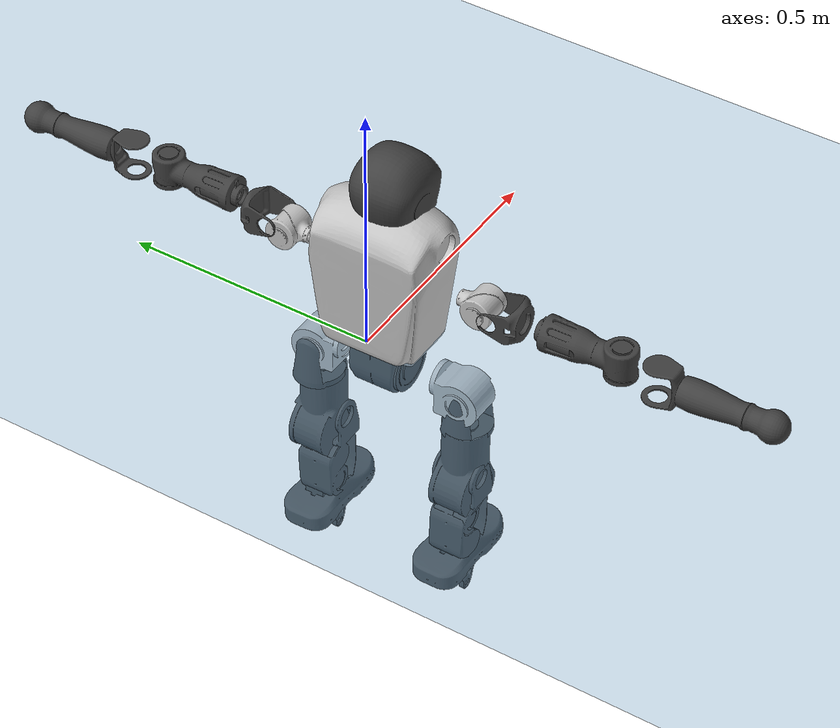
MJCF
<mujoco model="T1">
  <compiler angle="radian" assetdir="assets" balanceinertia="true" inertiafromgeom="false"/>

  <option timestep="0.005" density="1.2" viscosity="2e-05"/>

  <size nkey="1"/>

  <visual>
    <quality shadowsize="8192"/>
    <map shadowclip="0.5"/>
  </visual>

  <default>
    <default class="/">
      <joint armature="0.01" damping="0.01" frictionloss="0.1"/>
      <geom contype="0" conaffinity="0" group="1" solref="-1000 -80"/>
      <site size="0.01 0.005 0.005" group="5"/>
      <general forcelimited="true" biastype="affine" gainprm="25" biasprm="0 -25 -0.6"/>
      <default class="t1">
        <geom rgba="0.25 0.25 0.25 1"/>
        <default class="visual">
          <geom type="mesh" group="2"/>
        </default>
        <default class="collision">
          <geom group="3"/>
        </default>
        <default class="foot">
          <geom size="0.1115 0.05 0.015" type="box" condim="6" group="4" priority="1" solimp="0.015 1 0.015"/>
        </default>
        <default class="reward_collision_sphere">
          <geom group="5" rgba="1 0 0 1"/>
        </default>
      </default>
    </default>
  </default>

  <asset>
    <texture type="skybox" colorspace="auto" name="//unnamed_texture_0" builtin="gradient" rgb1="0.95 0.95 0.95" rgb2="0.95 0.95 0.95" width="100" height="600"/>
    <texture type="2d" colorspace="auto" name="texplane" builtin="checker" rgb1="0.345 0.575 0.748" rgb2="0.345 0.575 0.748" markrgb="1 1 1" width="512" height="512"/>
    <material name="MatPlane" class="/" texture="texplane" texuniform="true" texrepeat="2 2" specular="0.9"/>
    <mesh name="Trunk" class="/" file="Trunk.stl"/>
    <mesh name="H1" class="/" file="H1.stl"/>
    <mesh name="H2" class="/" file="H2.stl"/>
    <mesh name="AL1" class="/" file="AL1.stl"/>
    <mesh name="AL2" class="/" file="AL2.stl"/>
    <mesh name="AL3" class="/" file="AL3.stl"/>
    <mesh name="left_hand_link" class="/" file="left_hand_link.stl"/>
    <mesh name="AR1" class="/" file="AR1.stl"/>
    <mesh name="AR2" class="/" file="AR2.stl"/>
    <mesh name="AR3" class="/" file="AR3.stl"/>
    <mesh name="right_hand_link" class="/" file="right_hand_link.stl"/>
    <mesh name="Waist" class="/" file="Waist.stl"/>
    <mesh name="Hip_Pitch_Left" class="/" file="Hip_Pitch_Left.stl"/>
    <mesh name="Hip_Roll_Left" class="/" file="Hip_Roll_Left.stl"/>
    <mesh name="Hip_Yaw_Left" class="/" file="Hip_Yaw_Left.stl"/>
    <mesh name="Shank_Left" class="/" file="Shank_Left.stl"/>
    <mesh name="Ankle_Cross_Left" class="/" file="Ankle_Cross_Left.stl"/>
    <mesh name="left_foot_link" class="/" file="left_foot_link.stl"/>
    <mesh name="Hip_Pitch_Right" class="/" file="Hip_Pitch_Right.stl"/>
    <mesh name="Hip_Roll_Right" class="/" file="Hip_Roll_Right.stl"/>
    <mesh name="Hip_Yaw_Right" class="/" file="Hip_Yaw_Right.stl"/>
    <mesh name="Shank_Right" class="/" file="Shank_Right.stl"/>
    <mesh name="Ankle_Cross_Right" class="/" file="Ankle_Cross_Right.stl"/>
    <mesh name="right_foot_link" class="/" file="right_foot_link.stl"/>
  </asset>

  <worldbody>
    <geom name="floor" class="/" size="100 100 0.125" type="plane" group="0" material="MatPlane"/>
    <light name="toplight_shadow" class="/" pos="0 0 5" dir="0.0990148 0.0990148 -0.990148" type="directional" ambient="0.04 0.04 0.04" diffuse="0.55 0.55 0.55" specular="0.12 0.12 0.12"/>
    <light name="toplight_fill" class="/" pos="0 0 5" dir="0.0990148 0.0990148 -0.990148" type="directional" castshadow="false" ambient="0.04 0.04 0.04" diffuse="0.3 0.3 0.3" specular="0.08 0.08 0.08"/>
    <body name="trunk" childclass="t1" pos="-0.00144205 -0.00774539 0.01214" quat="0.999979 -0.00163876 0.00279233 0.00569338">
      <inertial pos="0.0536872 0.000726064 0.0703145" quat="0.999937 -0.00144674 -0.00973402 0.0053735" mass="14.5646" diaginertia="0.0971924 0.58444 0.00904922"/>
      <joint name="//unnamed_joint_0" type="free" armature="0" damping="0" frictionloss="0"/>
      <geom name="//unnamed_geom_1" class="visual" rgba="0.76 0.76 0.76 1" mesh="Trunk"/>
      <geom name="//unnamed_geom_2" class="collision" size="0.0780317 0.104042 0.156063" pos="0.0582558 0 0.0799567" type="box"/>
      <geom name="//unnamed_geom_3" class="reward_collision_sphere" size="0.119649" pos="0.0582558 0 0.0666306"/>
      <geom name="//unnamed_geom_4" class="reward_collision_sphere" size="0.0156063" pos="0.0582558 0.126143 0"/>
      <geom name="//unnamed_geom_5" class="reward_collision_sphere" size="0.0156063" pos="0.0582558 -0.126143 0"/>
      <geom name="//unnamed_geom_6" class="reward_collision_sphere" size="0.0156063" pos="0.0582558 0.158792 0.119935"/>
      <geom name="//unnamed_geom_7" class="reward_collision_sphere" size="0.0156063" pos="0.0582558 -0.158792 0.119935"/>
      <site name="imu" pos="0.0596996 0.00160361 -0.00697896" size="0.0104042"/>
      <camera name="track" pos="0 -2.96807 0" quat="0.707107 0.707107 0 0" mode="trackcom"/>
      <camera name="ego_camera" pos="0.118453 0 0.279848" quat="-0.5 -0.5 0.5 0.5"/>
      <body name="H1" pos="0.0527493 -0.000470661 0.153571" quat="0.999984 -0.00459423 0.00339079 -0.000331292">
        <inertial pos="-0.0101933 -0.00807393 0.0354428" quat="0.76422 -0.0116979 0.000753763 0.644849" mass="0.442117" diaginertia="0.000187405 0.00136097 2.12548e-05"/>
        <joint name="AAHead_yaw" pos="0 0 0" axis="0.000735803 -0.000240063 1" range="-1.29557 1.63458" armature="0.0103277" damping="0.0354756" frictionloss="0.0797662"/>
        <geom name="//unnamed_geom_8" class="visual" mesh="H1"/>
        <body name="H2" pos="0.0028172 -0.00313789 0.0324813" quat="0.99998 0.0010876 0.00489671 -0.00383993">
          <inertial pos="0.00580678 0.000112064 0.0642768" quat="0.988483 0.105101 -0.0742632 -0.0796227" mass="0.839969" diaginertia="0.00197931 0.0157192 0.000230272"/>
          <joint name="Head_pitch" pos="0 0 0" axis="-0.0559474 -0.998283 -0.017357" stiffness="0.027534" range="-1.04404 0.108534" armature="0.00506625" damping="0" frictionloss="0.0382168"/>
          <geom name="//unnamed_geom_9" class="visual" mesh="H2"/>
          <geom name="//unnamed_geom_10" class="collision" size="0.0832338" pos="0.0097093 0 0.0732937"/>
          <geom name="//unnamed_geom_11" class="reward_collision_sphere" size="0.0936381" pos="0.0194186 0 0.0666306"/>
        </body>
      </body>
      <body name="AL1" pos="0.0436297 0.15071 0.139583" quat="1 -1.52518e-05 0.000453078 5.39128e-05">
        <inertial pos="0.0122547 0.07185 0.00574248" quat="0.498681 0.470383 -0.540049 0.488267" mass="0.654037" diaginertia="0.00123417 0.00840079 4.20132e-05"/>
        <joint name="Left_Shoulder_Pitch" pos="0 0 0" axis="9.66522e-05 1 6.92809e-05" range="-3.27922 1.23777" armature="0.0101281" damping="0" frictionloss="0.129701"/>
        <geom name="//unnamed_geom_12" class="visual" rgba="0.76 0.76 0.76 1" mesh="AL1"/>
        <body name="AL2" pos="-0.00151 0.0725208 0.0125386" quat="0.999982 -0.00371546 0.00197625 -0.00426162">
          <inertial pos="0.00829259 0.0551168 0.0107758" quat="0.504478 0.512093 -0.491343 0.491777" mass="0.161565" diaginertia="0.0003648 0.00276451 2.27233e-05"/>
          <joint name="Left_Shoulder_Roll" pos="0 0 0" axis="-0.998152 -0.0119939 -0.0595688" range="-1.54078 1.79076" armature="0.00972088" damping="0.00287203" frictionloss="0.166848"/>
          <geom name="//unnamed_geom_13" class="visual" mesh="AL2"/>
          <body name="AL3" pos="0.0124644 0.0956609 0.00160064" quat="1 4.34372e-05 6.33188e-05 -4.64186e-05">
            <inertial pos="0.00180769 0.126479 -0.0110484" quat="0.707195 0.706988 -0.00286218 -0.0059461" mass="1.12678" diaginertia="0.0102083 0.0909417 8.68599e-05"/>
            <joint name="Left_Elbow_Pitch" pos="0 0 0" axis="0.0357804 -0.998395 0.0438898" stiffness="0.00130262" range="-2.30808 2.2745" armature="0.012485" damping="0.00620061" frictionloss="0.0776531"/>
            <geom name="//unnamed_geom_14" class="visual" mesh="AL3"/>
            <geom name="//unnamed_geom_15" class="collision" size="0.0312127 0.0780317" pos="0 0.0742017 0" quat="0.707105 0.707108 0 0" type="cylinder"/>
            <geom name="//unnamed_geom_16" class="reward_collision_sphere" size="0.0374552"/>
            <body name="left_hand_link" pos="0.00788104 0.229861 -0.0131104" quat="0.999998 -0.00190731 0.000216715 0.000996299">
              <inertial pos="-0.000495445 0.156998 -0.00837537" quat="0.709785 0.704411 -0.00293622 0.00129058" mass="0.328883" diaginertia="0.00682974 0.0441075 2.3528e-05"/>
              <joint name="Left_Elbow_Yaw" pos="0 0 0" axis="-0.0528227 -0.0119059 0.998533" stiffness="0.0432355" range="-2.51468 0.0191672" armature="0.0102849" damping="0.0126955" frictionloss="0.064596"/>
              <geom name="//unnamed_geom_17" class="visual" mesh="left_hand_link"/>
              <geom name="//unnamed_geom_18" class="collision" size="0.0312127 0.091037" pos="0 0.192924 0" quat="0.707105 0.707108 0 0" type="cylinder"/>
              <geom name="//unnamed_geom_19" class="reward_collision_sphere" size="0.0520211"/>
              <geom name="//unnamed_geom_20" class="reward_collision_sphere" size="0.0364148" pos="0 0.163244 0"/>
              <geom name="//unnamed_geom_21" class="reward_collision_sphere" size="0.0364148" pos="0 0.319067 0"/>
            </body>
          </body>
        </body>
      </body>
      <body name="AR1" pos="0.0464936 -0.157457 0.135611" quat="0.999982 -0.00347377 0.00479192 0.00126331">
        <inertial pos="-0.000257966 -0.0612364 -0.00239402" quat="0.49893 0.492107 -0.527649 0.480089" mass="0.62234" diaginertia="0.00139578 0.00998507 3.98196e-05"/>
        <joint name="Right_Shoulder_Pitch" pos="0 0 0" axis="0.00379328 -0.999867 0.0158339" stiffness="0.0529667" range="-1.22414 3.15469" armature="0.0121159" damping="0.0583977" frictionloss="0.101745"/>
        <geom name="//unnamed_geom_22" class="visual" rgba="0.76 0.76 0.76 1" mesh="AR1"/>
        <body name="AR2" pos="-0.000746343 -0.0733818 -0.00353745" quat="0.999993 -0.00272848 -0.000957641 0.00234107">
          <inertial pos="0.0086264 -0.0558491 -0.00811576" quat="0.510577 0.484914 -0.515705 0.488076" mass="0.203197" diaginertia="0.000287709 0.00250847 2.61767e-05"/>
          <joint name="Right_Shoulder_Roll" pos="0 0 0" axis="-0.999963 0.00772974 0.00386344" range="-1.80222 1.5985" armature="0.0095026" damping="0" frictionloss="0.048092"/>
          <geom name="//unnamed_geom_23" class="visual" mesh="AR2"/>
          <body name="AR3" pos="-0.00237638 -0.0999284 0.00368933" quat="0.999999 -0.00047727 -0.0013697 -0.000440935">
            <inertial pos="0.0126523 -0.125406 -0.00244344" quat="0.679498 0.733483 -0.00413004 -0.0163753" mass="0.956422" diaginertia="0.0119338 0.101649 8.11727e-05"/>
            <joint name="Right_Elbow_Pitch" pos="0 0 0" axis="0.0146373 0.999502 -0.0279666" stiffness="0.0662798" range="-2.27349 2.39209" armature="0.0157465" damping="0.0110777" frictionloss="0.105879"/>
            <geom name="//unnamed_geom_24" class="visual" mesh="AR3"/>
            <geom name="//unnamed_geom_25" class="collision" size="0.0312127 0.0780317" pos="0 -0.0742017 0" quat="0.707105 0.707108 0 0" type="cylinder"/>
            <geom name="//unnamed_geom_26" class="reward_collision_sphere" size="0.0374552"/>
            <body name="right_hand_link" pos="0.000443821 -0.218919 -0.0127423" quat="1 0.00082052 2.08976e-05 -0.000207346">
              <inertial pos="0.00788257 -0.171707 0.00391221" quat="0.711937 0.702077 -0.00542225 0.0142628" mass="0.394887" diaginertia="0.00713065 0.0664744 2.8092e-05"/>
              <joint name="Right_Elbow_Yaw" pos="0 0 0" axis="0.0180424 -0.00196399 0.999835" stiffness="0.0166437" range="0.00291439 2.41961" armature="0.0127949" damping="0.0349756" frictionloss="0.105463"/>
              <geom name="//unnamed_geom_27" class="visual" mesh="right_hand_link"/>
              <geom name="//unnamed_geom_28" class="collision" size="0.0312127 0.091037" pos="0 -0.192924 0" quat="0.707105 0.707108 0 0" type="cylinder"/>
              <geom name="//unnamed_geom_29" class="reward_collision_sphere" size="0.0520211"/>
              <geom name="//unnamed_geom_30" class="reward_collision_sphere" size="0.0364148" pos="0 -0.163244 0"/>
              <geom name="//unnamed_geom_31" class="reward_collision_sphere" size="0.0364148" pos="0 -0.319067 0"/>
            </body>
          </body>
        </body>
      </body>
      <body name="Waist" pos="0.0621883 0.00142746 -0.0851865" quat="1 -0.000418637 -0.000190982 3.10483e-05">
        <inertial pos="-0.00434438 0.000884633 3.49514e-05" quat="0.983514 0.00521707 -0.180754 0.000118281" mass="2.85165" diaginertia="0.0049243 0.0317819 0.000660514"/>
        <joint name="Waist" pos="0 0 0" axis="0.00898093 -0.0112433 0.999896" stiffness="0.0362907" range="-1.39254 1.44578" armature="0.0115767" damping="0.0658666" frictionloss="0.0967527"/>
        <geom name="//unnamed_geom_32" class="visual" mesh="Waist"/>
        <body name="Hip_Pitch_Left" pos="0.00134856 0.14403 -0.0109513" quat="1 0.000351693 -9.47093e-05 -0.00036274">
          <inertial pos="0.00827778 -0.00999443 0.000990989" quat="0.97328 0.228156 0.0255128 0.00443014" mass="0.994489" diaginertia="0.00142722 0.0106835 0.000163135"/>
          <joint name="Left_Hip_Pitch" pos="0 0 0" axis="-0.0331986 0.999375 0.0121331" stiffness="0.0488339" range="-1.99817 1.58996" armature="0.0103391" damping="0.0586742" frictionloss="0.157636"/>
          <geom name="//unnamed_geom_33" class="visual" rgba="0.76 0.76 0.76 1" mesh="Hip_Pitch_Left"/>
          <body name="Hip_Roll_Left" pos="-0.00541823 0.00104127 -0.0155866" quat="1 0.000166438 0.000385228 -0.000350627">
            <inertial pos="0.000759071 0.00198911 -0.0354501" quat="0.69913 -0.0307767 -0.00867904 0.714279" mass="0.386644" diaginertia="0.00137157 0.00888571 6.10339e-05"/>
            <joint name="Left_Hip_Roll" pos="0 0 0" axis="-0.999801 0.0198671 0.00158192" range="-1.74175 0.175005" armature="0.0104027" damping="0" frictionloss="0.148491"/>
            <geom name="//unnamed_geom_34" class="visual" mesh="Hip_Roll_Left"/>
            <geom name="//unnamed_geom_35" class="reward_collision_sphere" size="0.0572233"/>
            <body name="Hip_Yaw_Left" pos="0.0094804 -0.00164382 -0.0678967" quat="1 -0.000434114 1.79276e-05 0.000266087">
              <inertial pos="-0.00889529 0.00115824 -0.0477326" quat="0.710479 -0.0370064 -0.0251512 0.702295" mass="2.72933" diaginertia="0.0186433 0.176404 0.000351762"/>
              <joint name="Left_Hip_Yaw" pos="0 0 0" axis="0.0291169 0.0343603 -0.998985" stiffness="0.0672146" range="-1.03657 0.823757" armature="0.0152063" damping="0.0445031" frictionloss="0.160908"/>
              <geom name="//unnamed_geom_36" class="visual" mesh="Hip_Yaw_Left"/>
              <geom name="//unnamed_geom_37" class="collision" size="0.0520211 0.0832338" type="cylinder"/>
              <body name="Shank_Left" pos="-0.00642105 -0.0115916 -0.0998235" quat="0.99998 -0.00493767 -0.00160784 0.00366536">
                <inertial pos="-0.0119002 0.0139691 -0.0784002" quat="0.997806 0.0087529 0.0303609 0.0581725" mass="1.77394" diaginertia="0.0242974 0.229435 0.000227662"/>
                <joint name="Left_Knee_Pitch" pos="0 0 0" axis="-0.0314751 0.999499 0.00318328" stiffness="0.00361174" range="0.0564946 2.3163" armature="0.00587957" damping="0.0215928" frictionloss="0.163682"/>
                <geom name="//unnamed_geom_38" class="visual" mesh="Shank_Left"/>
                <geom name="//unnamed_geom_39" class="collision" size="0.0520211 0.0780317" pos="0 0 -0.0799567" type="cylinder"/>
                <geom name="//unnamed_geom_40" class="reward_collision_sphere" size="0.0676275"/>
                <body name="Ankle_Cross_Left" pos="0.0126702 0.00425888 -0.18818" quat="1 -8.84146e-05 -0.000156475 -0.000531495">
                  <inertial pos="-0.00367716 6.1204e-05 -0.00469063" quat="0.443926 0.519124 0.536717 0.495353" mass="0.0747755" diaginertia="2.48269e-05 0.000177336 1.44666e-06"/>
                  <joint name="Left_Ankle_Pitch" pos="0 0 0" axis="-0.0343145 0.999325 0.0131493" range="-0.846493 0.565298" armature="0.0114317" damping="0.00776705" frictionloss="0.0970322"/>
                  <geom name="//unnamed_geom_41" class="visual" mesh="Ankle_Cross_Left"/>
                  <body name="left_foot_link" pos="-0.00875583 0.00103599 -0.00989631" quat="0.999993 -0.00315341 0.00034494 0.00208806">
                    <inertial pos="0.000258424 -0.000465689 -0.0194765" quat="-0.0015467 0.620866 0.00243839 0.783911" mass="0.889501" diaginertia="0.00271732 0.0180037 0.000326761"/>
                    <joint name="Left_Ankle_Roll" pos="0 0 0" axis="-0.999391 -0.0197892 -0.0287293" range="-0.273732 0.334415" armature="0.0102491" damping="0" frictionloss="0.10522"/>
                    <geom name="//unnamed_geom_42" class="visual" mesh="left_foot_link"/>
                    <geom name="left_foot" class="foot" size="0.0663691 0.0287987 0.0123284" pos="0.0097093 0 -0.00999459"/>
                    <geom name="//unnamed_geom_44" class="reward_collision_sphere" size="0.054102" pos="0.0097093 0 -0.00999459"/>
                    <geom name="//unnamed_geom_45" class="reward_collision_sphere" size="0.0312127" pos="0.0922384 -0.0341328 -0.00999459"/>
                    <geom name="//unnamed_geom_46" class="reward_collision_sphere" size="0.0312127" pos="-0.0679651 -0.0341328 -0.00999459"/>
                    <site name="left_foot" class="foot" pos="0.0097093 0 -0.00999459" size="0.0104042"/>
                  </body>
                </body>
              </body>
            </body>
          </body>
        </body>
        <body name="Hip_Pitch_Right" pos="0.00899544 -0.157952 -0.0108085" quat="0.999983 0.00530093 0.00261534 -9.90165e-05">
          <inertial pos="0.0010963 0.0240692 -0.0148279" quat="0.972877 -0.228972 0.0144128 -0.0295713" mass="1.10938" diaginertia="0.001488 0.0100461 0.000145648"/>
          <joint name="Right_Hip_Pitch" pos="0 0 0" axis="-0.0019355 -0.999998 0.000583107" stiffness="0.0341653" range="-1.71851 2.01373" armature="0.0108631" damping="0" frictionloss="0.038747"/>
          <geom name="//unnamed_geom_47" class="visual" rgba="0.76 0.76 0.76 1" mesh="Hip_Pitch_Right"/>
          <body name="Hip_Roll_Right" pos="0.011091 -0.000937102 -0.0227088" quat="1 3.12314e-05 -0.000309204 7.24699e-05">
            <inertial pos="0.00512924 0.00104722 -0.0415375" quat="0.707119 -0.00611904 -0.00608643 0.707042" mass="0.432618" diaginertia="0.00175691 0.0102712 6.40207e-05"/>
            <joint name="Right_Hip_Roll" pos="0 0 0" axis="-0.999516 0.0290575 0.0110837" range="-0.355963 1.65869" armature="0.00925305" damping="0.0357873" frictionloss="0.05217"/>
            <geom name="//unnamed_geom_48" class="visual" mesh="Hip_Roll_Right"/>
            <geom name="//unnamed_geom_49" class="reward_collision_sphere" size="0.0572233"/>
            <body name="Hip_Yaw_Right" pos="-0.00964595 -0.00243081 -0.0649139" quat="1 -0.000268047 0.000551119 -0.000544697">
              <inertial pos="0.00328829 -0.0136 -0.0615212" quat="0.712175 -0.0344807 -0.033967 0.700331" mass="3.00151" diaginertia="0.0223121 0.202399 0.000420343"/>
              <joint name="Right_Hip_Yaw" pos="0 0 0" axis="0.0204894 0.00790341 -0.999759" stiffness="0.00812111" range="-1.03519 0.998786" armature="0.010766" damping="0" frictionloss="0.105591"/>
              <geom name="//unnamed_geom_50" class="visual" mesh="Hip_Yaw_Right"/>
              <geom name="//unnamed_geom_51" class="collision" size="0.0520211 0.0832338" type="cylinder"/>
              <body name="Shank_Right" pos="-0.014254 -0.00112391 -0.102054" quat="1 -0.00026747 -3.2718e-05 -1.07119e-05">
                <inertial pos="0.00842464 -0.00444682 -0.0736497" quat="0.999002 -0.0439365 0.0035977 0.00719876" mass="2.09352" diaginertia="0.0360329 0.258531 0.000300513"/>
                <joint name="Right_Knee_Pitch" pos="0 0 0" axis="0.00136069 -0.999991 0.00400697" range="-2.35532 0.222025" armature="0.0113536" damping="0" frictionloss="0.147338"/>
                <geom name="//unnamed_geom_52" class="visual" mesh="Shank_Right"/>
                <geom name="//unnamed_geom_53" class="collision" size="0.0520211 0.0780317" pos="0 0 -0.0799567" type="cylinder"/>
                <geom name="//unnamed_geom_54" class="reward_collision_sphere" size="0.0676275"/>
                <body name="Ankle_Cross_Right" pos="0.00632814 0.00553326 -0.175921" quat="0.999998 2.88098e-05 -0.000327431 -0.00204113">
                  <inertial pos="-0.00488864 0.00635337 -0.00564051" quat="0.453591 0.544746 0.56838 0.417675" mass="0.0928166" diaginertia="2.64814e-05 0.000194151 1.56338e-06"/>
                  <joint name="Right_Ankle_Pitch" pos="0 0 0" axis="-0.00629594 -0.999979 0.00159953" range="-0.629477 0.718215" armature="0.0109437" damping="0" frictionloss="0.111434"/>
                  <geom name="//unnamed_geom_55" class="visual" mesh="Ankle_Cross_Right"/>
                  <body name="right_foot_link" pos="0.000876309 0.00146071 -0.0156085" quat="1 -0.000265368 -0.000260336 0.000478176">
                    <inertial pos="-0.000251303 0.00457066 -0.0190803" quat="-0.00336292 0.624543 -0.00214893 0.78098" mass="0.780375" diaginertia="0.00226936 0.0186639 0.000296433"/>
                    <joint name="Right_Ankle_Roll" pos="0 0 0" axis="-0.999996 0.00280199 -0.000250695" stiffness="0.000580341" range="-0.380107 0.460969" armature="0.0101792" damping="0.0288903" frictionloss="0.031719"/>
                    <geom name="//unnamed_geom_56" class="visual" mesh="right_foot_link"/>
                    <geom name="right_foot" class="foot" size="0.0790291 0.0782316 0.00745883" pos="0.0097093 0 -0.00999459"/>
                    <geom name="//unnamed_geom_58" class="reward_collision_sphere" size="0.0416169"/>
                    <geom name="//unnamed_geom_59" class="reward_collision_sphere" size="0.0312127" pos="0.0097093 0 -0.00999459"/>
                    <geom name="//unnamed_geom_60" class="reward_collision_sphere" size="0.0312127" pos="0.0922384 0.0341328 -0.00999459"/>
                    <geom name="//unnamed_geom_61" class="reward_collision_sphere" size="0.0312127" pos="-0.0679651 0.0341328 -0.00999459"/>
                    <site name="right_foot" class="foot" pos="0.0097093 0 -0.00999459" size="0.0104042"/>
                  </body>
                </body>
              </body>
            </body>
          </body>
        </body>
      </body>
    </body>
  </worldbody>

  <contact>
    <pair class="/" geom1="floor" geom2="left_foot" name="//unnamed_contact_0"/>
    <pair class="/" geom1="floor" geom2="right_foot" name="//unnamed_contact_1"/>
  </contact>

  <actuator>
    <general name="AAHead_yaw" class="/" joint="AAHead_yaw" forcerange="-7.12716 7.12716" gainprm="19.8926" biasprm="0 -19.8926 -0.618361"/>
    <general name="Head_pitch" class="/" joint="Head_pitch" forcerange="-5.75672 5.75672" gainprm="19.8926" biasprm="0 -19.8926 -0.618361"/>
    <general name="Left_Shoulder_Pitch" class="/" joint="Left_Shoulder_Pitch" forcerange="-22.4231 22.4231" gainprm="19.8926" biasprm="0 -19.8926 -0.618361"/>
    <general name="Left_Shoulder_Roll" class="/" joint="Left_Shoulder_Roll" forcerange="-16.5703 16.5703" gainprm="19.8926" biasprm="0 -19.8926 -0.618361"/>
    <general name="Left_Elbow_Pitch" class="/" joint="Left_Elbow_Pitch" forcerange="-26.1525 26.1525" gainprm="19.8926" biasprm="0 -19.8926 -0.618361"/>
    <general name="Left_Elbow_Yaw" class="/" joint="Left_Elbow_Yaw" forcerange="-18.9241 18.9241" gainprm="19.8926" biasprm="0 -19.8926 -0.618361"/>
    <general name="Right_Shoulder_Pitch" class="/" joint="Right_Shoulder_Pitch" forcerange="-17.2768 17.2768" gainprm="19.8926" biasprm="0 -19.8926 -0.618361"/>
    <general name="Right_Shoulder_Roll" class="/" joint="Right_Shoulder_Roll" forcerange="-13.7277 13.7277" gainprm="19.8926" biasprm="0 -19.8926 -0.618361"/>
    <general name="Right_Elbow_Pitch" class="/" joint="Right_Elbow_Pitch" forcerange="-18.6278 18.6278" gainprm="19.8926" biasprm="0 -19.8926 -0.618361"/>
    <general name="Right_Elbow_Yaw" class="/" joint="Right_Elbow_Yaw" forcerange="-19.0742 19.0742" gainprm="19.8926" biasprm="0 -19.8926 -0.618361"/>
    <general name="Waist" class="/" joint="Waist" forcerange="-30.8501 30.8501" gainprm="19.8926" biasprm="0 -19.8926 -0.618361"/>
    <general name="Left_Hip_Pitch" class="/" joint="Left_Hip_Pitch" forcerange="-46.141 46.141" gainprm="19.8926" biasprm="0 -19.8926 -0.618361"/>
    <general name="Left_Hip_Roll" class="/" joint="Left_Hip_Roll" forcerange="-16.4899 16.4899" gainprm="19.8926" biasprm="0 -19.8926 -0.618361"/>
    <general name="Left_Hip_Yaw" class="/" joint="Left_Hip_Yaw" forcerange="-39.8906 39.8906" gainprm="19.8926" biasprm="0 -19.8926 -0.618361"/>
    <general name="Left_Knee_Pitch" class="/" joint="Left_Knee_Pitch" forcerange="-34.344 34.344" gainprm="19.8926" biasprm="0 -19.8926 -0.618361"/>
    <general name="Left_Ankle_Pitch" class="/" joint="Left_Ankle_Pitch" forcerange="-26.4242 26.4242" gainprm="19.8926" biasprm="0 -19.8926 -0.618361"/>
    <general name="Left_Ankle_Roll" class="/" joint="Left_Ankle_Roll" forcerange="-19.4744 19.4744" gainprm="19.8926" biasprm="0 -19.8926 -0.618361"/>
    <general name="Right_Hip_Pitch" class="/" joint="Right_Hip_Pitch" forcerange="-66.1843 66.1843" gainprm="19.8926" biasprm="0 -19.8926 -0.618361"/>
    <general name="Right_Hip_Roll" class="/" joint="Right_Hip_Roll" forcerange="-32.2391 32.2391" gainprm="19.8926" biasprm="0 -19.8926 -0.618361"/>
    <general name="Right_Hip_Yaw" class="/" joint="Right_Hip_Yaw" forcerange="-22.2441 22.2441" gainprm="19.8926" biasprm="0 -19.8926 -0.618361"/>
    <general name="Right_Knee_Pitch" class="/" joint="Right_Knee_Pitch" forcerange="-66.3133 66.3133" gainprm="19.8926" biasprm="0 -19.8926 -0.618361"/>
    <general name="Right_Ankle_Pitch" class="/" joint="Right_Ankle_Pitch" forcerange="-21.8953 21.8953" gainprm="19.8926" biasprm="0 -19.8926 -0.618361"/>
    <general name="Right_Ankle_Roll" class="/" joint="Right_Ankle_Roll" forcerange="-15.4624 15.4624" gainprm="19.8926" biasprm="0 -19.8926 -0.618361"/>
  </actuator>

  <sensor>
    <gyro site="imu" name="imu_angular_velocity"/>
    <velocimeter site="imu" name="imu_linear_velocity"/>
    <framelinvel objtype="site" objname="left_foot" name="left_foot_global_linear_velocity"/>
    <framelinvel objtype="site" objname="right_foot" name="right_foot_global_linear_velocity"/>
  </sensor>

  <keyframe>
    <key name="home" qpos="0 0 0.6385 1 0 0 0 0 0 0 1.4 0 -0.4 0 -1.4 0 0.4 0 -0.4 0 0 0.8 -0.4 0 0.4 0 0 -0.8 0.4 0"/>
  </keyframe>
</mujoco>
